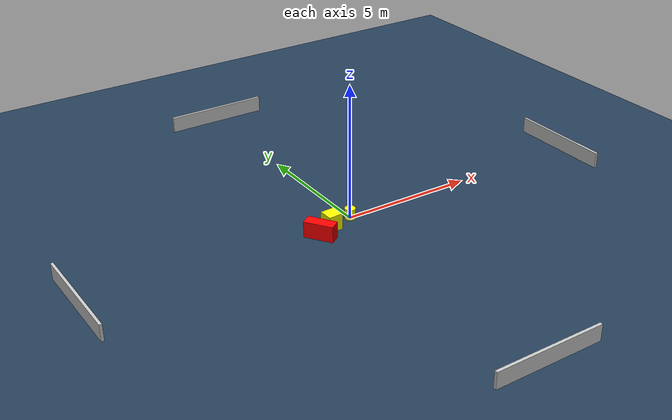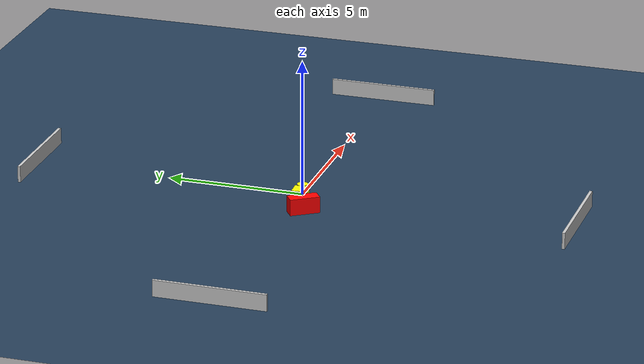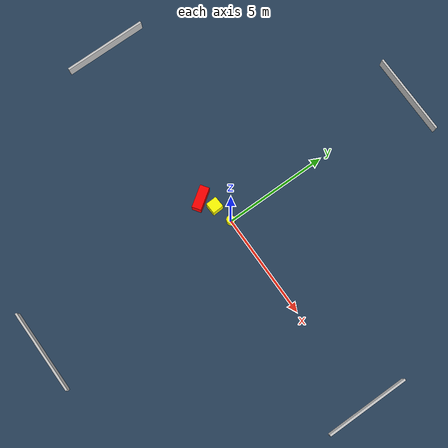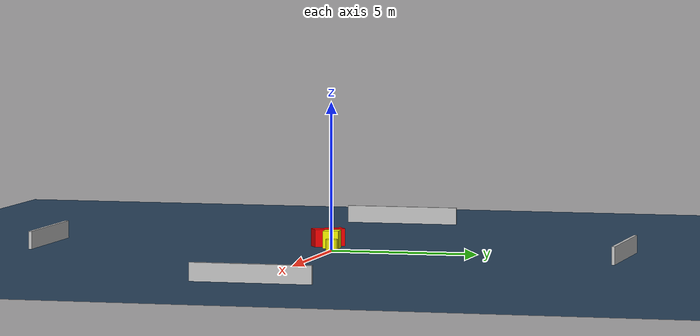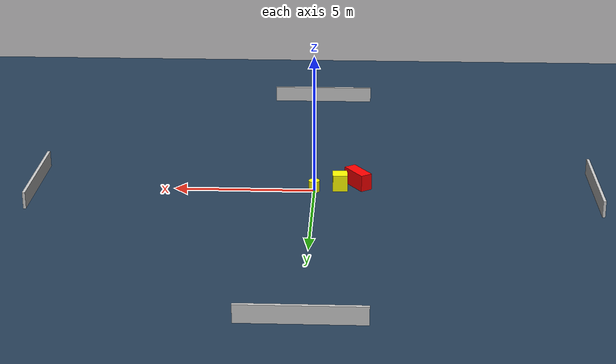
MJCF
<?xml version="1.0" ?>
<mujoco model="generated_environment">
  <option timestep="0.01" integrator="RK4" cone="elliptic"/>
  <default>
    <geom density="1"/>
  </default>
  <asset>
    <texture builtin="gradient" height="3072" name="skybox" rgb1="0.3 0.5 0.7" rgb2="0 0 0" type="skybox" width="512"/>
    <texture builtin="checker" height="300" name="groundplane" rgb1="0.2 0.3 0.4" rgb2="0.1 0.2 0.3" type="2d" width="300"/>
    <material name="groundplane" reflectance="0.2" texrepeat="5 5" texture="groundplane"/>
  </asset>
  <worldbody>
    <light dir="0 0 -1" directional="true" pos="0 0 1.5"/>
    <geom condim="3" friction="0.5 0.005 0.001" material="groundplane" name="floor" pos="0 0 0" size="0 0 0.05" type="plane"/>
    <body name="walls">
      <geom name="wall_1" condim="4" pos="-10.0 0.0 0.3" rgba="0.800000011920929 0.800000011920929 0.800000011920929 1.0" size="0.05 2.0 0.3" type="box"/>
      <geom name="wall_2" condim="4" pos="10.0 0.0 0.3" rgba="0.800000011920929 0.800000011920929 0.800000011920929 1.0" size="0.05 2.0 0.3" type="box"/>
      <geom name="wall_3" condim="4" pos="0.0 -10.0 0.3" rgba="0.800000011920929 0.800000011920929 0.800000011920929 1.0" size="2.0 0.05 0.3" type="box"/>
      <geom name="wall_4" condim="4" pos="0.0 10.0 0.3" rgba="0.800000011920929 0.800000011920929 0.800000011920929 1.0" size="2.0 0.05 0.3" type="box"/>
    </body>
    <body name="robot">
      <joint name="joint_x" type="slide" pos="0 0 0" axis="1 0 0"/>
      <joint name="joint_y" type="slide" pos="0 0 0" axis="0 1 0"/>
      <geom name="robot" type="cylinder" pos="0.0 0.0 0.2" size="0.2 0.2 0.0" mass="5.0" friction="1.0 0.005 0.0001" condim="4" rgba="1.0 1.0 0.0 1.0"/>
    </body>
    <body name="obstacle_1_movable">
      <geom name="obstacle_1_movable" condim="4" pos="-0.9183820979151887 -0.22367301427576394 0.3" euler="0 0 92.88865263903367" friction="0.0 0.005 0.001" rgba="1.0 1.0 0.0 1.0" size="0.2675346270006796 0.2641861375855002 0.3" type="box" mass="0.1"/>
      <joint type="free"/>
    </body>
    <body name="obstacle_2_static">
      <geom name="obstacle_2_static" condim="4" pos="-1.5633645977322033 -0.5324951727891603 0.3" euler="0 0 304.40103521643414" friction="0.0 0.005 0.001" rgba="1.0 0.0 0.0 1.0" size="0.5396217146823115 0.21890043173211818 0.3" type="box"/>
    </body>
  </worldbody>
  <actuator>
    <motor name="actuator_x" joint="joint_x" gear="1" ctrlrange="-1 1"/>
    <motor name="actuator_y" joint="joint_y" gear="1" ctrlrange="-1 1"/>
  </actuator>
</mujoco>
